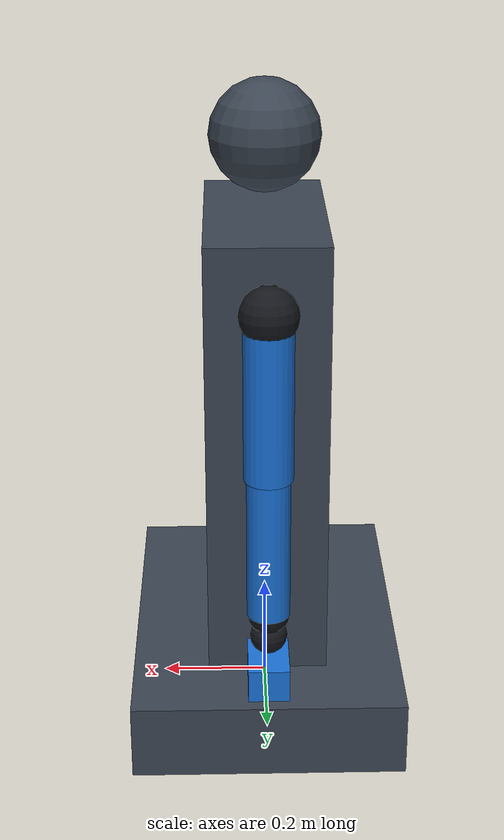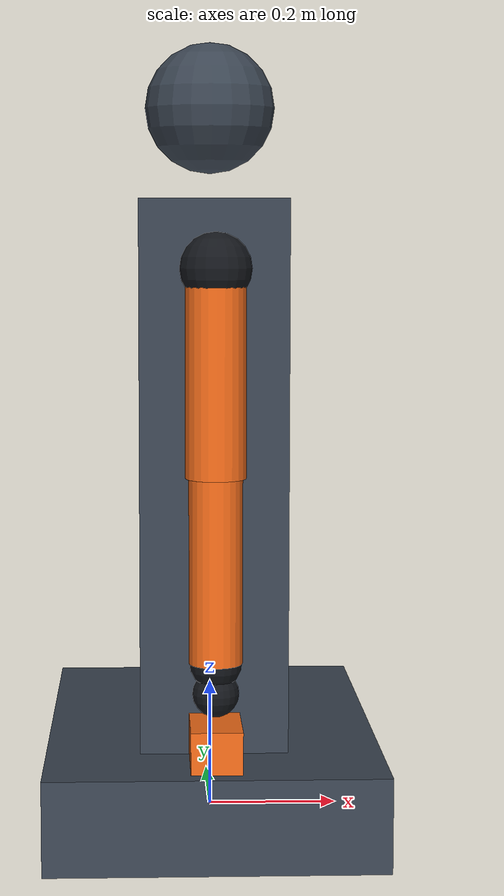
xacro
<?xml version="1.0"?>
<robot name="upper_body_canfd_robot" xmlns:xacro="http://www.ros.org/wiki/xacro">
  <xacro:include filename="$(find motor_hardware_interface)/urdf/canfd_hardware.xacro"/>
  <xacro:arg name="controllers_file" default=""/>
  <xacro:arg name="hardware_backend" default="gazebo"/>
  <!-- CAN-FD 后端的总线覆盖列表："逻辑总线:接口,逻辑总线:接口"（数量任意）。 -->
  <xacro:arg name="bus_overrides" default="left_arm:vcan0,right_arm:vcan1"/>
  <xacro:arg name="motor_config_file" default=""/>

  <!-- Coordinate convention: +X forward, +Y left, +Z up. -->
  <material name="torso_gray"><color rgba="0.23 0.27 0.32 1"/></material>
  <material name="left_blue"><color rgba="0.10 0.45 0.85 1"/></material>
  <material name="right_orange"><color rgba="0.95 0.42 0.10 1"/></material>
  <material name="joint_dark"><color rgba="0.08 0.09 0.11 1"/></material>

  <xacro:macro name="box_inertia" params="mass x y z ox oy oz">
    <inertial>
      <origin xyz="${ox} ${oy} ${oz}" rpy="0 0 0"/>
      <mass value="${mass}"/>
      <inertia
        ixx="${mass * (y*y + z*z) / 12.0}" ixy="0" ixz="0"
        iyy="${mass * (x*x + z*z) / 12.0}" iyz="0"
        izz="${mass * (x*x + y*y) / 12.0}"/>
    </inertial>
  </xacro:macro>

  <xacro:macro name="sphere_inertia" params="mass radius">
    <inertial>
      <mass value="${mass}"/>
      <inertia
        ixx="${0.4 * mass * radius * radius}" ixy="0" ixz="0"
        iyy="${0.4 * mass * radius * radius}" iyz="0"
        izz="${0.4 * mass * radius * radius}"/>
    </inertial>
  </xacro:macro>

  <xacro:macro name="cylinder_inertia_z" params="mass radius length center_z">
    <inertial>
      <origin xyz="0 0 ${center_z}" rpy="0 0 0"/>
      <mass value="${mass}"/>
      <inertia
        ixx="${mass * (3*radius*radius + length*length) / 12.0}" ixy="0" ixz="0"
        iyy="${mass * (3*radius*radius + length*length) / 12.0}" iyz="0"
        izz="${0.5 * mass * radius * radius}"/>
    </inertial>
  </xacro:macro>

  <xacro:macro name="joint_ball_link" params="name color mass:=0.30 radius:=0.052">
    <link name="${name}">
      <visual>
        <geometry><sphere radius="${radius}"/></geometry>
        <material name="${color}"/>
      </visual>
      <collision><geometry><sphere radius="${radius}"/></geometry></collision>
      <xacro:sphere_inertia mass="${mass}" radius="${radius}"/>
    </link>
  </xacro:macro>

  <xacro:macro name="arm" params="side sign arm_color">
    <!-- RP motor 1: shoulder yaw. -->
    <xacro:joint_ball_link name="${side}_shoulder_yaw_link" color="joint_dark"/>
    <joint name="${side}_shoulder_yaw_joint" type="revolute">
      <origin xyz="0 ${sign * 0.265} 0.72" rpy="0 0 0"/>
      <parent link="chest_link"/>
      <child link="${side}_shoulder_yaw_link"/>
      <axis xyz="0 0 1"/>
      <limit lower="-1.57" upper="1.57" effort="60" velocity="6"/>
      <dynamics damping="0.06" friction="0.02"/>
    </joint>

    <!-- RP motor 2: shoulder roll. -->
    <xacro:joint_ball_link name="${side}_shoulder_roll_link" color="joint_dark"/>
    <joint name="${side}_shoulder_roll_joint" type="revolute">
      <parent link="${side}_shoulder_yaw_link"/>
      <child link="${side}_shoulder_roll_link"/>
      <axis xyz="1 0 0"/>
      <limit lower="-1.40" upper="1.40" effort="60" velocity="6"/>
      <dynamics damping="0.06" friction="0.02"/>
    </joint>

    <!-- RP motor 3: shoulder pitch; the upper arm hangs along -Z at q=0. -->
    <link name="${side}_upper_arm_link">
      <visual>
        <origin xyz="0 0 -0.15"/>
        <geometry><cylinder radius="0.044" length="0.30"/></geometry>
        <material name="${arm_color}"/>
      </visual>
      <collision>
        <origin xyz="0 0 -0.15"/>
        <geometry><cylinder radius="0.044" length="0.30"/></geometry>
      </collision>
      <xacro:cylinder_inertia_z mass="1.8" radius="0.044" length="0.30" center_z="-0.15"/>
    </link>
    <joint name="${side}_shoulder_pitch_joint" type="revolute">
      <parent link="${side}_shoulder_roll_link"/>
      <child link="${side}_upper_arm_link"/>
      <axis xyz="0 1 0"/>
      <limit lower="-2.20" upper="2.20" effort="60" velocity="6"/>
      <dynamics damping="0.08" friction="0.025"/>
    </joint>

    <!-- RP motor 4: elbow pitch. -->
    <link name="${side}_forearm_link">
      <visual>
        <origin xyz="0 0 -0.135"/>
        <geometry><cylinder radius="0.039" length="0.27"/></geometry>
        <material name="${arm_color}"/>
      </visual>
      <collision>
        <origin xyz="0 0 -0.135"/>
        <geometry><cylinder radius="0.039" length="0.27"/></geometry>
      </collision>
      <xacro:cylinder_inertia_z mass="1.2" radius="0.039" length="0.27" center_z="-0.135"/>
    </link>
    <joint name="${side}_elbow_pitch_joint" type="revolute">
      <origin xyz="0 0 -0.30" rpy="0 0 0"/>
      <parent link="${side}_upper_arm_link"/>
      <child link="${side}_forearm_link"/>
      <axis xyz="0 1 0"/>
      <limit lower="0.0" upper="2.55" effort="60" velocity="7"/>
      <dynamics damping="0.06" friction="0.02"/>
    </joint>

    <!-- 25/30 mm integrated motor N=1: wrist yaw. -->
    <xacro:joint_ball_link name="${side}_wrist_yaw_link" color="joint_dark" mass="0.22" radius="0.038"/>
    <joint name="${side}_wrist_yaw_joint" type="revolute">
      <origin xyz="0 0 -0.27" rpy="0 0 0"/>
      <parent link="${side}_forearm_link"/>
      <child link="${side}_wrist_yaw_link"/>
      <axis xyz="0 0 1"/>
      <limit lower="-1.75" upper="1.75" effort="5" velocity="12"/>
      <dynamics damping="0.025" friction="0.01"/>
    </joint>

    <!-- 25/30 mm integrated motor N=2: wrist pitch. -->
    <xacro:joint_ball_link name="${side}_wrist_pitch_link" color="joint_dark" mass="0.20" radius="0.034"/>
    <joint name="${side}_wrist_pitch_joint" type="revolute">
      <origin xyz="0 0 -0.045" rpy="0 0 0"/>
      <parent link="${side}_wrist_yaw_link"/>
      <child link="${side}_wrist_pitch_link"/>
      <axis xyz="0 1 0"/>
      <limit lower="-1.25" upper="1.25" effort="5" velocity="12"/>
      <dynamics damping="0.025" friction="0.01"/>
    </joint>

    <!-- 25/30 mm integrated motor N=3: wrist roll + hand. -->
    <link name="${side}_hand_link">
      <visual>
        <origin xyz="0 0 -0.075"/>
        <geometry><box size="0.075 0.12 0.15"/></geometry>
        <material name="${arm_color}"/>
      </visual>
      <collision>
        <origin xyz="0 0 -0.075"/>
        <geometry><box size="0.075 0.12 0.15"/></geometry>
      </collision>
      <xacro:box_inertia mass="0.45" x="0.075" y="0.12" z="0.15" ox="0" oy="0" oz="-0.075"/>
    </link>
    <joint name="${side}_wrist_roll_joint" type="revolute">
      <origin xyz="0 0 -0.043" rpy="0 0 0"/>
      <parent link="${side}_wrist_pitch_link"/>
      <child link="${side}_hand_link"/>
      <axis xyz="0 0 1"/>
      <limit lower="-2.80" upper="2.80" effort="5" velocity="14"/>
      <dynamics damping="0.02" friction="0.008"/>
    </joint>
  </xacro:macro>

  <!-- Heavy pedestal gives the half-body a stable laboratory base without an external mesh. -->
  <link name="base_link">
    <visual>
      <origin xyz="0 0 0.07"/>
      <geometry><box size="0.50 0.70 0.14"/></geometry>
      <material name="torso_gray"/>
    </visual>
    <collision>
      <origin xyz="0 0 0.07"/>
      <geometry><box size="0.50 0.70 0.14"/></geometry>
    </collision>
    <xacro:box_inertia mass="55" x="0.50" y="0.70" z="0.14" ox="0" oy="0" oz="0.07"/>
  </link>

  <link name="chest_link">
    <visual>
      <origin xyz="0 0 0.41"/>
      <geometry><box size="0.22 0.42 0.82"/></geometry>
      <material name="torso_gray"/>
    </visual>
    <collision>
      <origin xyz="0 0 0.41"/>
      <geometry><box size="0.22 0.42 0.82"/></geometry>
    </collision>
    <xacro:box_inertia mass="18" x="0.22" y="0.42" z="0.82" ox="0" oy="0" oz="0.41"/>
  </link>
  <joint name="base_to_chest" type="fixed">
    <origin xyz="0 0 0.14"/>
    <parent link="base_link"/>
    <child link="chest_link"/>
  </joint>

  <link name="head_dummy_link">
    <visual>
      <origin xyz="0 0 0.10"/>
      <geometry><sphere radius="0.10"/></geometry>
      <material name="torso_gray"/>
    </visual>
    <collision>
      <origin xyz="0 0 0.10"/>
      <geometry><sphere radius="0.10"/></geometry>
    </collision>
    <xacro:sphere_inertia mass="1.2" radius="0.10"/>
  </link>
  <joint name="chest_to_head_dummy" type="fixed">
    <origin xyz="0 0 0.86"/>
    <parent link="chest_link"/>
    <child link="head_dummy_link"/>
  </joint>

  <xacro:arm side="left" sign="1" arm_color="left_blue"/>
  <xacro:arm side="right" sign="-1" arm_color="right_orange"/>

  <xacro:macro name="sim_control_joint" params="joint effort">
    <joint name="${joint}">
      <command_interface name="effort">
        <param name="min">-${effort}</param>
        <param name="max">${effort}</param>
      </command_interface>
      <state_interface name="position"/>
      <state_interface name="velocity"/>
      <state_interface name="effort"/>
    </joint>
  </xacro:macro>

  <xacro:if value="${'$(arg hardware_backend)' == 'gazebo'}">
    <ros2_control name="GazeboSimSystem" type="system">
      <hardware><plugin>gz_ros2_control/GazeboSimSystem</plugin></hardware>
      <xacro:sim_control_joint joint="left_shoulder_yaw_joint" effort="60"/>
      <xacro:sim_control_joint joint="left_shoulder_roll_joint" effort="60"/>
      <xacro:sim_control_joint joint="left_shoulder_pitch_joint" effort="60"/>
      <xacro:sim_control_joint joint="left_elbow_pitch_joint" effort="60"/>
      <xacro:sim_control_joint joint="left_wrist_yaw_joint" effort="5"/>
      <xacro:sim_control_joint joint="left_wrist_pitch_joint" effort="5"/>
      <xacro:sim_control_joint joint="left_wrist_roll_joint" effort="5"/>
      <xacro:sim_control_joint joint="right_shoulder_yaw_joint" effort="60"/>
      <xacro:sim_control_joint joint="right_shoulder_roll_joint" effort="60"/>
      <xacro:sim_control_joint joint="right_shoulder_pitch_joint" effort="60"/>
      <xacro:sim_control_joint joint="right_elbow_pitch_joint" effort="60"/>
      <xacro:sim_control_joint joint="right_wrist_yaw_joint" effort="5"/>
      <xacro:sim_control_joint joint="right_wrist_pitch_joint" effort="5"/>
      <xacro:sim_control_joint joint="right_wrist_roll_joint" effort="5"/>
    </ros2_control>
    <gazebo>
    <!-- Humble's gz_ros2_control package supports Fortress; use the plugin name
         published by the official Humble demos rather than a Jetty-specific path. -->
    <plugin filename="gz_ros2_control-system" name="gz_ros2_control::GazeboSimROS2ControlPlugin">
      <parameters>$(arg controllers_file)</parameters>
      <hold_joints>true</hold_joints>
    </plugin>
    </gazebo>
  </xacro:if>

  <xacro:if value="${'$(arg hardware_backend)' == 'canfd'}">
    <ros2_control name="UpperBodyCanFdSystem" type="system">
      <xacro:canfd_hardware bus_overrides="$(arg bus_overrides)"
                            motor_config_file="$(arg motor_config_file)"/>
      <xacro:canfd_control_joint joint="left_shoulder_yaw_joint"/><xacro:canfd_control_joint joint="left_shoulder_roll_joint"/>
      <xacro:canfd_control_joint joint="left_shoulder_pitch_joint"/><xacro:canfd_control_joint joint="left_elbow_pitch_joint"/>
      <xacro:canfd_control_joint joint="left_wrist_yaw_joint"/><xacro:canfd_control_joint joint="left_wrist_pitch_joint"/><xacro:canfd_control_joint joint="left_wrist_roll_joint"/>
      <xacro:canfd_control_joint joint="right_shoulder_yaw_joint"/><xacro:canfd_control_joint joint="right_shoulder_roll_joint"/>
      <xacro:canfd_control_joint joint="right_shoulder_pitch_joint"/><xacro:canfd_control_joint joint="right_elbow_pitch_joint"/>
      <xacro:canfd_control_joint joint="right_wrist_yaw_joint"/><xacro:canfd_control_joint joint="right_wrist_pitch_joint"/><xacro:canfd_control_joint joint="right_wrist_roll_joint"/>
    </ros2_control>
  </xacro:if>
</robot>
